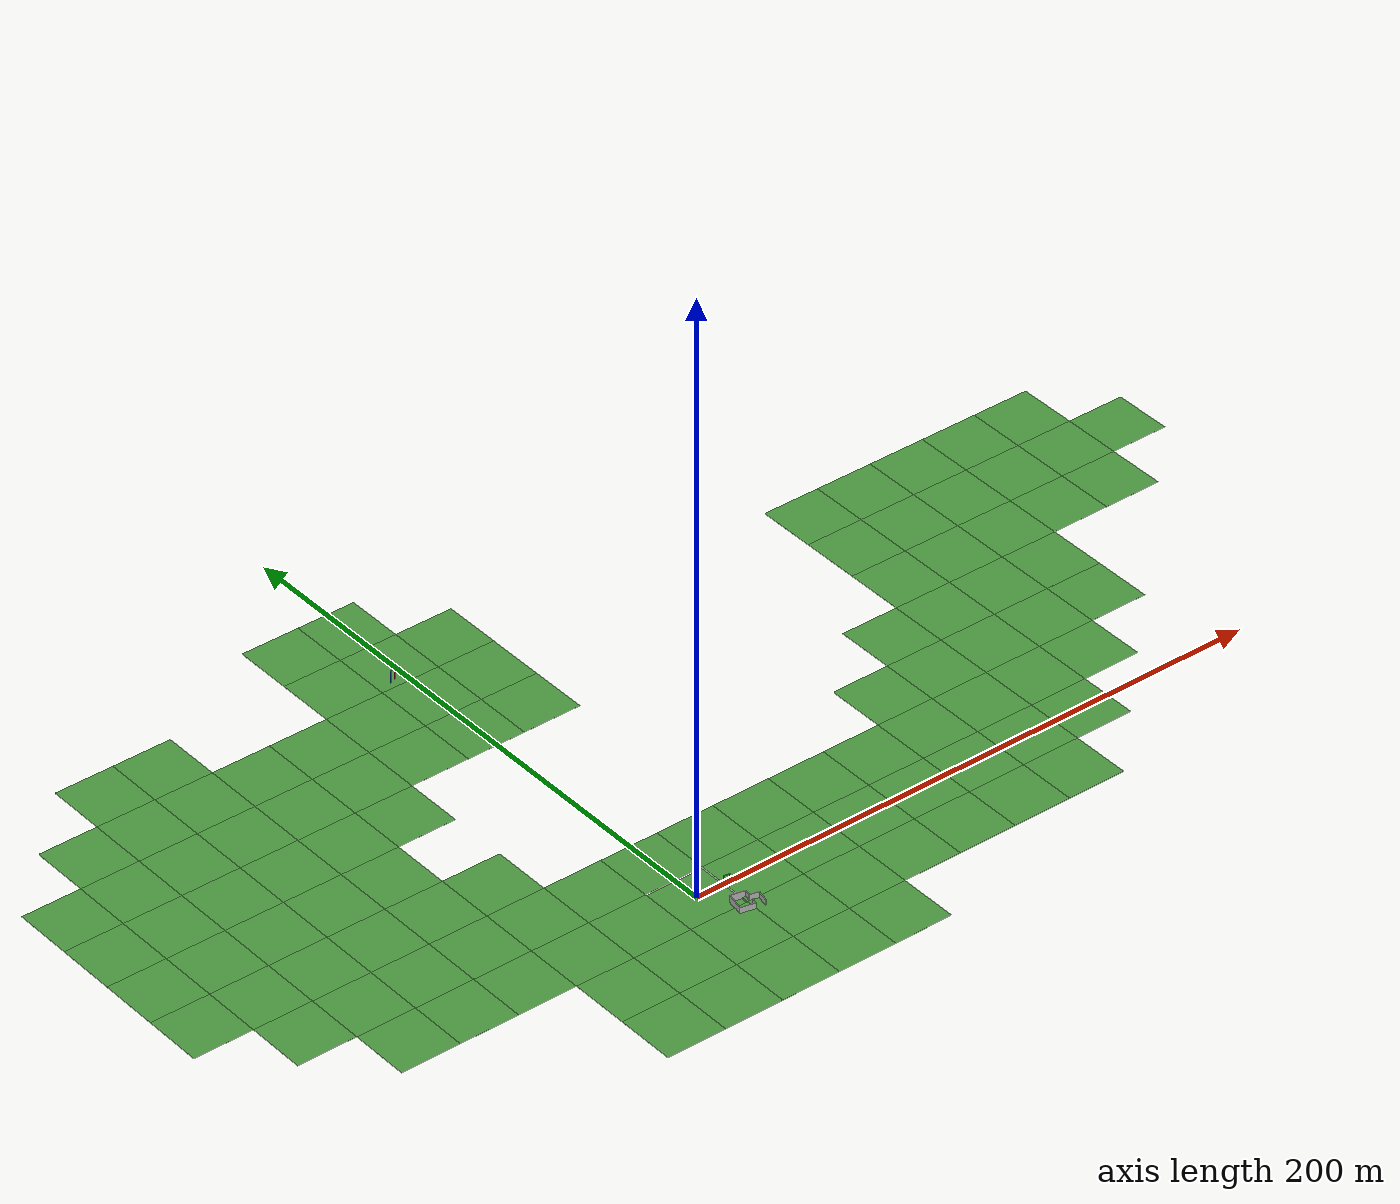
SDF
<sdf version="1.4">
 <world name="vrc_task_1">
  <scene><ambient>0.2 0.2 0.2 1.0</ambient><grid>false</grid></scene>
  <physics type="ode">
   <gravity>0 0 -9.81</gravity>
   <ode>
    <solver><type>quick</type><iters>50</iters><sor>1.4</sor></solver>
    <constraints>
     <cfm>0.0</cfm>
     <erp>0.2</erp>
     <contact_max_correcting_vel>100.0</contact_max_correcting_vel>
     <contact_surface_layer>0.0</contact_surface_layer>
    </constraints>
   </ode>
   <real_time_update_rate>1000</real_time_update_rate>
   <max_step_size>0.001</max_step_size>
  </physics>
  <light type="directional" name="sun">
   <cast_shadows>false</cast_shadows>
   <pose>0 0 100 0 0 0</pose>
   <diffuse>0.8 0.8 0.8 1</diffuse>
   <specular>0.9 0.9 0.9 1</specular>
   <attenuation>
    <range>1000</range>
    <constant>0.9</constant>
    <linear>0.01</linear>
    <quadratic>0.001</quadratic>
   </attenuation>
   <direction>0.2 0.2 -0.9</direction>
  </light>
  <light type="point" name="light_bulb">
   <cast_shadows>false</cast_shadows>
   <pose>11.48 -7.62 5 0 0 0</pose>
   <diffuse>0.3 0.3 0.3 1</diffuse>
   <specular>0.0 0.0 0.0 1</specular>
   <attenuation>
    <range>80</range>
    <constant>0.9</constant>
    <linear>0.01</linear>
    <quadratic>0.001</quadratic>
   </attenuation>
  </light>
  <include><uri>model://vrc_grass_plane2</uri></include>
  <include><uri>model://starting_pen</uri><static>true</static><pose>7.7 -10.14 0.0 0 0 -.221</pose></include>
  <include>
   <uri>model://gate</uri>
   <name>gate_0</name>
   <static>true</static>
   <pose>9.75 -1.15 2.0 0 0 1.3491</pose>
  </include>
  <include>
   <uri>model://gate</uri>
   <name>gate_3</name>
   <static>true</static>
   <pose>-4.287 132.542 2.0 0 0 1.8505</pose>
  </include>
  <model name="road_boxes">
   <static>true</static>
   <link name="link">
    <collision name="collision_1">
     <pose>-25.5 5.1 0 0 0 -0.197</pose>
     <geometry><box><size>51 7.34 0.02</size></box></geometry>
     <surface><friction><ode><mu>100</mu><mu2>50</mu2></ode></friction></surface>
    </collision>
    <collision name="collision_2">
     <pose>-75 30 0 0 0 -0.6747</pose>
     <geometry><box><size>66.0 7.34 0.02</size></box></geometry>
     <surface><friction><ode><mu>100</mu><mu2>50</mu2></ode></friction></surface>
    </collision>
    <collision name="collision_3">
     <pose>-100 76 0 0 0 0</pose>
     <geometry><box><size>7.34 56 0.02</size></box></geometry>
     <surface><friction><ode><mu>100</mu><mu2>50</mu2></ode></friction></surface>
    </collision>
    <collision name="collision_4">
     <pose>-50 115 0 0 0 0.291</pose>
     <geometry><box><size>105 7.34 0.02</size></box></geometry>
     <surface><friction><ode><mu>100</mu><mu2>50</mu2></ode></friction></surface>
    </collision>
    <collision name="collision_5">
     <pose>-5 135 0 0 0 1.8505</pose>
     <geometry><box><size>6 5 0.02</size></box></geometry>
     <surface><friction><ode><mu>100</mu><mu2>50</mu2></ode></friction></surface>
    </collision>
   </link>
  </model>
  <plugin filename="libVRCPlugin.so" name="vrc_plugin">
   <atlas><model_name>atlas</model_name><pin_link>utorso</pin_link></atlas>
   <drc_vehicle>
    <model_name>drc_vehicle</model_name>
    <seat_link>polaris_ranger_ev::chassis</seat_link>
   </drc_vehicle>
   <drc_fire_hose>
    <fire_hose_model>fire_hose</fire_hose_model>
    <coupling_link>coupling</coupling_link>
    <standpipe_model>standpipe</standpipe_model>
    <spout_link>standpipe</spout_link>
    <thread_pitch>-1000</thread_pitch>
    <coupling_relative_pose>1.17038e-05 -0.125623 0.35 -0.0412152 -1.57078 1.61199</coupling_relative_pose>
   </drc_fire_hose>
  </plugin>
  <plugin filename="libVRCScoringPlugin.so" name="vrc_scoring">
   <score_file>/tmp/vrc_final_task4/score.log</score_file>
  </plugin>
 </world>
</sdf>

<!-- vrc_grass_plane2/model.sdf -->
<sdf version='1.4'>
  <model name='vrc_grass_plane_2'>
    <static>true</static>
    <link name='link'>
      <collision name='collision'>
        <geometry>
          <plane>
            <normal>0 0 1</normal>
            <size>500 500</size>
          </plane>
        </geometry>
        <surface>
          <friction>
            <ode>
              <mu>0.5</mu>
              <mu2>.5</mu2>
            </ode>
          </friction>
        </surface>
      </collision>

      <visual name='visual_1'>
        <pose>0 0 0 0 0 0</pose>
        <cast_shadows>false</cast_shadows>
        <geometry>
          <plane>
            <normal>0 0 1</normal>
            <size>20 20</size>
          </plane>
        </geometry>
        <material>
          <script>
            <uri>model://grass_plane/materials/scripts</uri>
            <uri>model://grass_plane/materials/textures</uri>
            <name>vrc/grass</name>
          </script>
        </material>
      </visual>
      <visual name='visual_2'>
        <pose>0 100 0 0 0 0</pose>
        <cast_shadows>false</cast_shadows>
        <geometry>
          <plane>
            <normal>0 0 1</normal>
            <size>20 20</size>
          </plane>
        </geometry>
        <material>
          <script>
            <uri>model://grass_plane/materials/scripts</uri>
            <uri>model://grass_plane/materials/textures</uri>
            <name>vrc/grass</name>
          </script>
        </material>
      </visual>
      <visual name='visual_3'>
        <pose>0 120 0 0 0 0</pose>
        <cast_shadows>false</cast_shadows>
        <geometry>
          <plane>
            <normal>0 0 1</normal>
            <size>20 20</size>
          </plane>
        </geometry>
        <material>
          <script>
            <uri>model://grass_plane/materials/scripts</uri>
            <uri>model://grass_plane/materials/textures</uri>
            <name>vrc/grass</name>
          </script>
        </material>
      </visual>
      <visual name='visual_4'>
        <pose>0 140 0 0 0 0</pose>
        <cast_shadows>false</cast_shadows>
        <geometry>
          <plane>
            <normal>0 0 1</normal>
            <size>20 20</size>
          </plane>
        </geometry>
        <material>
          <script>
            <uri>model://grass_plane/materials/scripts</uri>
            <uri>model://grass_plane/materials/textures</uri>
            <name>vrc/grass</name>
          </script>
        </material>
      </visual>
      <visual name='visual_5'>
        <pose>0 160 0 0 0 0</pose>
        <cast_shadows>false</cast_shadows>
        <geometry>
          <plane>
            <normal>0 0 1</normal>
            <size>20 20</size>
          </plane>
        </geometry>
        <material>
          <script>
            <uri>model://grass_plane/materials/scripts</uri>
            <uri>model://grass_plane/materials/textures</uri>
            <name>vrc/grass</name>
          </script>
        </material>
      </visual>
      <visual name='visual_6'>
        <pose>0 20 0 0 0 0</pose>
        <cast_shadows>false</cast_shadows>
        <geometry>
          <plane>
            <normal>0 0 1</normal>
            <size>20 20</size>
          </plane>
        </geometry>
        <material>
          <script>
            <uri>model://grass_plane/materials/scripts</uri>
            <uri>model://grass_plane/materials/textures</uri>
            <name>vrc/grass</name>
          </script>
        </material>
      </visual>
      <visual name='visual_7'>
        <pose>0 -20 0 0 0 0</pose>
        <cast_shadows>false</cast_shadows>
        <geometry>
          <plane>
            <normal>0 0 1</normal>
            <size>20 20</size>
          </plane>
        </geometry>
        <material>
          <script>
            <uri>model://grass_plane/materials/scripts</uri>
            <uri>model://grass_plane/materials/textures</uri>
            <name>vrc/grass</name>
          </script>
        </material>
      </visual>
      <visual name='visual_8'>
        <pose>0 -40 0 0 0 0</pose>
        <cast_shadows>false</cast_shadows>
        <geometry>
          <plane>
            <normal>0 0 1</normal>
            <size>20 20</size>
          </plane>
        </geometry>
        <material>
          <script>
            <uri>model://grass_plane/materials/scripts</uri>
            <uri>model://grass_plane/materials/textures</uri>
            <name>vrc/grass</name>
          </script>
        </material>
      </visual>
      <visual name='visual_9'>
        <pose>-100 0 0 0 0 0</pose>
        <cast_shadows>false</cast_shadows>
        <geometry>
          <plane>
            <normal>0 0 1</normal>
            <size>20 20</size>
          </plane>
        </geometry>
        <material>
          <script>
            <uri>model://grass_plane/materials/scripts</uri>
            <uri>model://grass_plane/materials/textures</uri>
            <name>vrc/grass</name>
          </script>
        </material>
      </visual>
      <visual name='visual_10'>
        <pose>100 0 0 0 0 0</pose>
        <cast_shadows>false</cast_shadows>
        <geometry>
          <plane>
            <normal>0 0 1</normal>
            <size>20 20</size>
          </plane>
        </geometry>
        <material>
          <script>
            <uri>model://grass_plane/materials/scripts</uri>
            <uri>model://grass_plane/materials/textures</uri>
            <name>vrc/grass</name>
          </script>
        </material>
      </visual>
      <visual name='visual_11'>
        <pose>-100 100 0 0 0 0</pose>
        <cast_shadows>false</cast_shadows>
        <geometry>
          <plane>
            <normal>0 0 1</normal>
            <size>20 20</size>
          </plane>
        </geometry>
        <material>
          <script>
            <uri>model://grass_plane/materials/scripts</uri>
            <uri>model://grass_plane/materials/textures</uri>
            <name>vrc/grass</name>
          </script>
        </material>
      </visual>
      <visual name='visual_12'>
        <pose>-100 120 0 0 0 0</pose>
        <cast_shadows>false</cast_shadows>
        <geometry>
          <plane>
            <normal>0 0 1</normal>
            <size>20 20</size>
          </plane>
        </geometry>
        <material>
          <script>
            <uri>model://grass_plane/materials/scripts</uri>
            <uri>model://grass_plane/materials/textures</uri>
            <name>vrc/grass</name>
          </script>
        </material>
      </visual>
      <visual name='visual_13'>
        <pose>-100 140 0 0 0 0</pose>
        <cast_shadows>false</cast_shadows>
        <geometry>
          <plane>
            <normal>0 0 1</normal>
            <size>20 20</size>
          </plane>
        </geometry>
        <material>
          <script>
            <uri>model://grass_plane/materials/scripts</uri>
            <uri>model://grass_plane/materials/textures</uri>
            <name>vrc/grass</name>
          </script>
        </material>
      </visual>
      <visual name='visual_14'>
        <pose>-100 20 0 0 0 0</pose>
        <cast_shadows>false</cast_shadows>
        <geometry>
          <plane>
            <normal>0 0 1</normal>
            <size>20 20</size>
          </plane>
        </geometry>
        <material>
          <script>
            <uri>model://grass_plane/materials/scripts</uri>
            <uri>model://grass_plane/materials/textures</uri>
            <name>vrc/grass</name>
          </script>
        </material>
      </visual>
      <visual name='visual_15'>
        <pose>100 20 0 0 0 0</pose>
        <cast_shadows>false</cast_shadows>
        <geometry>
          <plane>
            <normal>0 0 1</normal>
            <size>20 20</size>
          </plane>
        </geometry>
        <material>
          <script>
            <uri>model://grass_plane/materials/scripts</uri>
            <uri>model://grass_plane/materials/textures</uri>
            <name>vrc/grass</name>
          </script>
        </material>
      </visual>
      <visual name='visual_16'>
        <pose>100 -20 0 0 0 0</pose>
        <cast_shadows>false</cast_shadows>
        <geometry>
          <plane>
            <normal>0 0 1</normal>
            <size>20 20</size>
          </plane>
        </geometry>
        <material>
          <script>
            <uri>model://grass_plane/materials/scripts</uri>
            <uri>model://grass_plane/materials/textures</uri>
            <name>vrc/grass</name>
          </script>
        </material>
      </visual>
      <visual name='visual_17'>
        <pose>-100 40 0 0 0 0</pose>
        <cast_shadows>false</cast_shadows>
        <geometry>
          <plane>
            <normal>0 0 1</normal>
            <size>20 20</size>
          </plane>
        </geometry>
        <material>
          <script>
            <uri>model://grass_plane/materials/scripts</uri>
            <uri>model://grass_plane/materials/textures</uri>
            <name>vrc/grass</name>
          </script>
        </material>
      </visual>
      <visual name='visual_18'>
        <pose>100 40 0 0 0 0</pose>
        <cast_shadows>false</cast_shadows>
        <geometry>
          <plane>
            <normal>0 0 1</normal>
            <size>20 20</size>
          </plane>
        </geometry>
        <material>
          <script>
            <uri>model://grass_plane/materials/scripts</uri>
            <uri>model://grass_plane/materials/textures</uri>
            <name>vrc/grass</name>
          </script>
        </material>
      </visual>
      <visual name='visual_19'>
        <pose>-100 60 0 0 0 0</pose>
        <cast_shadows>false</cast_shadows>
        <geometry>
          <plane>
            <normal>0 0 1</normal>
            <size>20 20</size>
          </plane>
        </geometry>
        <material>
          <script>
            <uri>model://grass_plane/materials/scripts</uri>
            <uri>model://grass_plane/materials/textures</uri>
            <name>vrc/grass</name>
          </script>
        </material>
      </visual>
      <visual name='visual_20'>
        <pose>-100 80 0 0 0 0</pose>
        <cast_shadows>false</cast_shadows>
        <geometry>
          <plane>
            <normal>0 0 1</normal>
            <size>20 20</size>
          </plane>
        </geometry>
        <material>
          <script>
            <uri>model://grass_plane/materials/scripts</uri>
            <uri>model://grass_plane/materials/textures</uri>
            <name>vrc/grass</name>
          </script>
        </material>
      </visual>
      <visual name='visual_21'>
        <pose>120 0 0 0 0 0</pose>
        <cast_shadows>false</cast_shadows>
        <geometry>
          <plane>
            <normal>0 0 1</normal>
            <size>20 20</size>
          </plane>
        </geometry>
        <material>
          <script>
            <uri>model://grass_plane/materials/scripts</uri>
            <uri>model://grass_plane/materials/textures</uri>
            <name>vrc/grass</name>
          </script>
        </material>
      </visual>
      <visual name='visual_22'>
        <pose>-120 100 0 0 0 0</pose>
        <cast_shadows>false</cast_shadows>
        <geometry>
          <plane>
            <normal>0 0 1</normal>
            <size>20 20</size>
          </plane>
        </geometry>
        <material>
          <script>
            <uri>model://grass_plane/materials/scripts</uri>
            <uri>model://grass_plane/materials/textures</uri>
            <name>vrc/grass</name>
          </script>
        </material>
      </visual>
      <visual name='visual_23'>
        <pose>-120 120 0 0 0 0</pose>
        <cast_shadows>false</cast_shadows>
        <geometry>
          <plane>
            <normal>0 0 1</normal>
            <size>20 20</size>
          </plane>
        </geometry>
        <material>
          <script>
            <uri>model://grass_plane/materials/scripts</uri>
            <uri>model://grass_plane/materials/textures</uri>
            <name>vrc/grass</name>
          </script>
        </material>
      </visual>
      <visual name='visual_24'>
        <pose>-120 20 0 0 0 0</pose>
        <cast_shadows>false</cast_shadows>
        <geometry>
          <plane>
            <normal>0 0 1</normal>
            <size>20 20</size>
          </plane>
        </geometry>
        <material>
          <script>
            <uri>model://grass_plane/materials/scripts</uri>
            <uri>model://grass_plane/materials/textures</uri>
            <name>vrc/grass</name>
          </script>
        </material>
      </visual>
      <visual name='visual_25'>
        <pose>120 20 0 0 0 0</pose>
        <cast_shadows>false</cast_shadows>
        <geometry>
          <plane>
            <normal>0 0 1</normal>
            <size>20 20</size>
          </plane>
        </geometry>
        <material>
          <script>
            <uri>model://grass_plane/materials/scripts</uri>
            <uri>model://grass_plane/materials/textures</uri>
            <name>vrc/grass</name>
          </script>
        </material>
      </visual>
      <visual name='visual_26'>
        <pose>120 -20 0 0 0 0</pose>
        <cast_shadows>false</cast_shadows>
        <geometry>
          <plane>
            <normal>0 0 1</normal>
            <size>20 20</size>
          </plane>
        </geometry>
        <material>
          <script>
            <uri>model://grass_plane/materials/scripts</uri>
            <uri>model://grass_plane/materials/textures</uri>
            <name>vrc/grass</name>
          </script>
        </material>
      </visual>
      <visual name='visual_27'>
        <pose>-120 40 0 0 0 0</pose>
        <cast_shadows>false</cast_shadows>
        <geometry>
          <plane>
            <normal>0 0 1</normal>
            <size>20 20</size>
          </plane>
        </geometry>
        <material>
          <script>
            <uri>model://grass_plane/materials/scripts</uri>
            <uri>model://grass_plane/materials/textures</uri>
            <name>vrc/grass</name>
          </script>
        </material>
      </visual>
      <visual name='visual_28'>
        <pose>120 40 0 0 0 0</pose>
        <cast_shadows>false</cast_shadows>
        <geometry>
          <plane>
            <normal>0 0 1</normal>
            <size>20 20</size>
          </plane>
        </geometry>
        <material>
          <script>
            <uri>model://grass_plane/materials/scripts</uri>
            <uri>model://grass_plane/materials/textures</uri>
            <name>vrc/grass</name>
          </script>
        </material>
      </visual>
      <visual name='visual_29'>
        <pose>-120 60 0 0 0 0</pose>
        <cast_shadows>false</cast_shadows>
        <geometry>
          <plane>
            <normal>0 0 1</normal>
            <size>20 20</size>
          </plane>
        </geometry>
        <material>
          <script>
            <uri>model://grass_plane/materials/scripts</uri>
            <uri>model://grass_plane/materials/textures</uri>
            <name>vrc/grass</name>
          </script>
        </material>
      </visual>
      <visual name='visual_30'>
        <pose>120 60 0 0 0 0</pose>
        <cast_shadows>false</cast_shadows>
        <geometry>
          <plane>
            <normal>0 0 1</normal>
            <size>20 20</size>
          </plane>
        </geometry>
        <material>
          <script>
            <uri>model://grass_plane/materials/scripts</uri>
            <uri>model://grass_plane/materials/textures</uri>
            <name>vrc/grass</name>
          </script>
        </material>
      </visual>
      <visual name='visual_31'>
        <pose>-120 80 0 0 0 0</pose>
        <cast_shadows>false</cast_shadows>
        <geometry>
          <plane>
            <normal>0 0 1</normal>
            <size>20 20</size>
          </plane>
        </geometry>
        <material>
          <script>
            <uri>model://grass_plane/materials/scripts</uri>
            <uri>model://grass_plane/materials/textures</uri>
            <name>vrc/grass</name>
          </script>
        </material>
      </visual>
      <visual name='visual_32'>
        <pose>140 0 0 0 0 0</pose>
        <cast_shadows>false</cast_shadows>
        <geometry>
          <plane>
            <normal>0 0 1</normal>
            <size>20 20</size>
          </plane>
        </geometry>
        <material>
          <script>
            <uri>model://grass_plane/materials/scripts</uri>
            <uri>model://grass_plane/materials/textures</uri>
            <name>vrc/grass</name>
          </script>
        </material>
      </visual>
      <visual name='visual_33'>
        <pose>-140 100 0 0 0 0</pose>
        <cast_shadows>false</cast_shadows>
        <geometry>
          <plane>
            <normal>0 0 1</normal>
            <size>20 20</size>
          </plane>
        </geometry>
        <material>
          <script>
            <uri>model://grass_plane/materials/scripts</uri>
            <uri>model://grass_plane/materials/textures</uri>
            <name>vrc/grass</name>
          </script>
        </material>
      </visual>
      <visual name='visual_34'>
        <pose>140 100 0 0 0 0</pose>
        <cast_shadows>false</cast_shadows>
        <geometry>
          <plane>
            <normal>0 0 1</normal>
            <size>20 20</size>
          </plane>
        </geometry>
        <material>
          <script>
            <uri>model://grass_plane/materials/scripts</uri>
            <uri>model://grass_plane/materials/textures</uri>
            <name>vrc/grass</name>
          </script>
        </material>
      </visual>
      <visual name='visual_35'>
        <pose>140 120 0 0 0 0</pose>
        <cast_shadows>false</cast_shadows>
        <geometry>
          <plane>
            <normal>0 0 1</normal>
            <size>20 20</size>
          </plane>
        </geometry>
        <material>
          <script>
            <uri>model://grass_plane/materials/scripts</uri>
            <uri>model://grass_plane/materials/textures</uri>
            <name>vrc/grass</name>
          </script>
        </material>
      </visual>
      <visual name='visual_36'>
        <pose>140 20 0 0 0 0</pose>
        <cast_shadows>false</cast_shadows>
        <geometry>
          <plane>
            <normal>0 0 1</normal>
            <size>20 20</size>
          </plane>
        </geometry>
        <material>
          <script>
            <uri>model://grass_plane/materials/scripts</uri>
            <uri>model://grass_plane/materials/textures</uri>
            <name>vrc/grass</name>
          </script>
        </material>
      </visual>
      <visual name='visual_37'>
        <pose>-140 40 0 0 0 0</pose>
        <cast_shadows>false</cast_shadows>
        <geometry>
          <plane>
            <normal>0 0 1</normal>
            <size>20 20</size>
          </plane>
        </geometry>
        <material>
          <script>
            <uri>model://grass_plane/materials/scripts</uri>
            <uri>model://grass_plane/materials/textures</uri>
            <name>vrc/grass</name>
          </script>
        </material>
      </visual>
      <visual name='visual_38'>
        <pose>140 40 0 0 0 0</pose>
        <cast_shadows>false</cast_shadows>
        <geometry>
          <plane>
            <normal>0 0 1</normal>
            <size>20 20</size>
          </plane>
        </geometry>
        <material>
          <script>
            <uri>model://grass_plane/materials/scripts</uri>
            <uri>model://grass_plane/materials/textures</uri>
            <name>vrc/grass</name>
          </script>
        </material>
      </visual>
      <visual name='visual_39'>
        <pose>-140 60 0 0 0 0</pose>
        <cast_shadows>false</cast_shadows>
        <geometry>
          <plane>
            <normal>0 0 1</normal>
            <size>20 20</size>
          </plane>
        </geometry>
        <material>
          <script>
            <uri>model://grass_plane/materials/scripts</uri>
            <uri>model://grass_plane/materials/textures</uri>
            <name>vrc/grass</name>
          </script>
        </material>
      </visual>
      <visual name='visual_40'>
        <pose>140 60 0 0 0 0</pose>
        <cast_shadows>false</cast_shadows>
        <geometry>
          <plane>
            <normal>0 0 1</normal>
            <size>20 20</size>
          </plane>
        </geometry>
        <material>
          <script>
            <uri>model://grass_plane/materials/scripts</uri>
            <uri>model://grass_plane/materials/textures</uri>
            <name>vrc/grass</name>
          </script>
        </material>
      </visual>
      <visual name='visual_41'>
        <pose>-140 80 0 0 0 0</pose>
        <cast_shadows>false</cast_shadows>
        <geometry>
          <plane>
            <normal>0 0 1</normal>
            <size>20 20</size>
          </plane>
        </geometry>
        <material>
          <script>
            <uri>model://grass_plane/materials/scripts</uri>
            <uri>model://grass_plane/materials/textures</uri>
            <name>vrc/grass</name>
          </script>
        </material>
      </visual>
      <visual name='visual_42'>
        <pose>140 80 0 0 0 0</pose>
        <cast_shadows>false</cast_shadows>
        <geometry>
          <plane>
            <normal>0 0 1</normal>
            <size>20 20</size>
          </plane>
        </geometry>
        <material>
          <script>
            <uri>model://grass_plane/materials/scripts</uri>
            <uri>model://grass_plane/materials/textures</uri>
            <name>vrc/grass</name>
          </script>
        </material>
      </visual>
      <visual name='visual_43'>
        <pose>160 100 0 0 0 0</pose>
        <cast_shadows>false</cast_shadows>
        <geometry>
          <plane>
            <normal>0 0 1</normal>
            <size>20 20</size>
          </plane>
        </geometry>
        <material>
          <script>
            <uri>model://grass_plane/materials/scripts</uri>
            <uri>model://grass_plane/materials/textures</uri>
            <name>vrc/grass</name>
          </script>
        </material>
      </visual>
      <visual name='visual_44'>
        <pose>160 120 0 0 0 0</pose>
        <cast_shadows>false</cast_shadows>
        <geometry>
          <plane>
            <normal>0 0 1</normal>
            <size>20 20</size>
          </plane>
        </geometry>
        <material>
          <script>
            <uri>model://grass_plane/materials/scripts</uri>
            <uri>model://grass_plane/materials/textures</uri>
            <name>vrc/grass</name>
          </script>
        </material>
      </visual>
      <visual name='visual_45'>
        <pose>160 20 0 0 0 0</pose>
        <cast_shadows>false</cast_shadows>
        <geometry>
          <plane>
            <normal>0 0 1</normal>
            <size>20 20</size>
          </plane>
        </geometry>
        <material>
          <script>
            <uri>model://grass_plane/materials/scripts</uri>
            <uri>model://grass_plane/materials/textures</uri>
            <name>vrc/grass</name>
          </script>
        </material>
      </visual>
      <visual name='visual_46'>
        <pose>160 40 0 0 0 0</pose>
        <cast_shadows>false</cast_shadows>
        <geometry>
          <plane>
            <normal>0 0 1</normal>
            <size>20 20</size>
          </plane>
        </geometry>
        <material>
          <script>
            <uri>model://grass_plane/materials/scripts</uri>
            <uri>model://grass_plane/materials/textures</uri>
            <name>vrc/grass</name>
          </script>
        </material>
      </visual>
      <visual name='visual_47'>
        <pose>160 60 0 0 0 0</pose>
        <cast_shadows>false</cast_shadows>
        <geometry>
          <plane>
            <normal>0 0 1</normal>
            <size>20 20</size>
          </plane>
        </geometry>
        <material>
          <script>
            <uri>model://grass_plane/materials/scripts</uri>
            <uri>model://grass_plane/materials/textures</uri>
            <name>vrc/grass</name>
          </script>
        </material>
      </visual>
      <visual name='visual_48'>
        <pose>160 80 0 0 0 0</pose>
        <cast_shadows>false</cast_shadows>
        <geometry>
          <plane>
            <normal>0 0 1</normal>
            <size>20 20</size>
          </plane>
        </geometry>
        <material>
          <script>
            <uri>model://grass_plane/materials/scripts</uri>
            <uri>model://grass_plane/materials/textures</uri>
            <name>vrc/grass</name>
          </script>
        </material>
      </visual>
      <visual name='visual_49'>
        <pose>180 100 0 0 0 0</pose>
        <cast_shadows>false</cast_shadows>
        <geometry>
          <plane>
            <normal>0 0 1</normal>
            <size>20 20</size>
          </plane>
        </geometry>
        <material>
          <script>
            <uri>model://grass_plane/materials/scripts</uri>
            <uri>model://grass_plane/materials/textures</uri>
            <name>vrc/grass</name>
          </script>
        </material>
      </visual>
      <visual name='visual_50'>
        <pose>180 120 0 0 0 0</pose>
        <cast_shadows>false</cast_shadows>
        <geometry>
          <plane>
            <normal>0 0 1</normal>
            <size>20 20</size>
          </plane>
        </geometry>
        <material>
          <script>
            <uri>model://grass_plane/materials/scripts</uri>
            <uri>model://grass_plane/materials/textures</uri>
            <name>vrc/grass</name>
          </script>
        </material>
      </visual>
      <visual name='visual_51'>
        <pose>180 40 0 0 0 0</pose>
        <cast_shadows>false</cast_shadows>
        <geometry>
          <plane>
            <normal>0 0 1</normal>
            <size>20 20</size>
          </plane>
        </geometry>
        <material>
          <script>
            <uri>model://grass_plane/materials/scripts</uri>
            <uri>model://grass_plane/materials/textures</uri>
            <name>vrc/grass</name>
          </script>
        </material>
      </visual>
      <visual name='visual_52'>
        <pose>180 60 0 0 0 0</pose>
        <cast_shadows>false</cast_shadows>
        <geometry>
          <plane>
            <normal>0 0 1</normal>
            <size>20 20</size>
          </plane>
        </geometry>
        <material>
          <script>
            <uri>model://grass_plane/materials/scripts</uri>
            <uri>model://grass_plane/materials/textures</uri>
            <name>vrc/grass</name>
          </script>
        </material>
      </visual>
      <visual name='visual_53'>
        <pose>180 80 0 0 0 0</pose>
        <cast_shadows>false</cast_shadows>
        <geometry>
          <plane>
            <normal>0 0 1</normal>
            <size>20 20</size>
          </plane>
        </geometry>
        <material>
          <script>
            <uri>model://grass_plane/materials/scripts</uri>
            <uri>model://grass_plane/materials/textures</uri>
            <name>vrc/grass</name>
          </script>
        </material>
      </visual>
      <visual name='visual_54'>
        <pose>-20 0 0 0 0 0</pose>
        <cast_shadows>false</cast_shadows>
        <geometry>
          <plane>
            <normal>0 0 1</normal>
            <size>20 20</size>
          </plane>
        </geometry>
        <material>
          <script>
            <uri>model://grass_plane/materials/scripts</uri>
            <uri>model://grass_plane/materials/textures</uri>
            <name>vrc/grass</name>
          </script>
        </material>
      </visual>
      <visual name='visual_55'>
        <pose>20 0 0 0 0 0</pose>
        <cast_shadows>false</cast_shadows>
        <geometry>
          <plane>
            <normal>0 0 1</normal>
            <size>20 20</size>
          </plane>
        </geometry>
        <material>
          <script>
            <uri>model://grass_plane/materials/scripts</uri>
            <uri>model://grass_plane/materials/textures</uri>
            <name>vrc/grass</name>
          </script>
        </material>
      </visual>
      <visual name='visual_56'>
        <pose>200 100 0 0 0 0</pose>
        <cast_shadows>false</cast_shadows>
        <geometry>
          <plane>
            <normal>0 0 1</normal>
            <size>20 20</size>
          </plane>
        </geometry>
        <material>
          <script>
            <uri>model://grass_plane/materials/scripts</uri>
            <uri>model://grass_plane/materials/textures</uri>
            <name>vrc/grass</name>
          </script>
        </material>
      </visual>
      <visual name='visual_57'>
        <pose>200 120 0 0 0 0</pose>
        <cast_shadows>false</cast_shadows>
        <geometry>
          <plane>
            <normal>0 0 1</normal>
            <size>20 20</size>
          </plane>
        </geometry>
        <material>
          <script>
            <uri>model://grass_plane/materials/scripts</uri>
            <uri>model://grass_plane/materials/textures</uri>
            <name>vrc/grass</name>
          </script>
        </material>
      </visual>
      <visual name='visual_58'>
        <pose>200 80 0 0 0 0</pose>
        <cast_shadows>false</cast_shadows>
        <geometry>
          <plane>
            <normal>0 0 1</normal>
            <size>20 20</size>
          </plane>
        </geometry>
        <material>
          <script>
            <uri>model://grass_plane/materials/scripts</uri>
            <uri>model://grass_plane/materials/textures</uri>
            <name>vrc/grass</name>
          </script>
        </material>
      </visual>
      <visual name='visual_59'>
        <pose>-20 100 0 0 0 0</pose>
        <cast_shadows>false</cast_shadows>
        <geometry>
          <plane>
            <normal>0 0 1</normal>
            <size>20 20</size>
          </plane>
        </geometry>
        <material>
          <script>
            <uri>model://grass_plane/materials/scripts</uri>
            <uri>model://grass_plane/materials/textures</uri>
            <name>vrc/grass</name>
          </script>
        </material>
      </visual>
      <visual name='visual_60'>
        <pose>20 100 0 0 0 0</pose>
        <cast_shadows>false</cast_shadows>
        <geometry>
          <plane>
            <normal>0 0 1</normal>
            <size>20 20</size>
          </plane>
        </geometry>
        <material>
          <script>
            <uri>model://grass_plane/materials/scripts</uri>
            <uri>model://grass_plane/materials/textures</uri>
            <name>vrc/grass</name>
          </script>
        </material>
      </visual>
      <visual name='visual_61'>
        <pose>-20 120 0 0 0 0</pose>
        <cast_shadows>false</cast_shadows>
        <geometry>
          <plane>
            <normal>0 0 1</normal>
            <size>20 20</size>
          </plane>
        </geometry>
        <material>
          <script>
            <uri>model://grass_plane/materials/scripts</uri>
            <uri>model://grass_plane/materials/textures</uri>
            <name>vrc/grass</name>
          </script>
        </material>
      </visual>
      <visual name='visual_62'>
        <pose>20 120 0 0 0 0</pose>
        <cast_shadows>false</cast_shadows>
        <geometry>
          <plane>
            <normal>0 0 1</normal>
            <size>20 20</size>
          </plane>
        </geometry>
        <material>
          <script>
            <uri>model://grass_plane/materials/scripts</uri>
            <uri>model://grass_plane/materials/textures</uri>
            <name>vrc/grass</name>
          </script>
        </material>
      </visual>
      <visual name='visual_63'>
        <pose>-20 140 0 0 0 0</pose>
        <cast_shadows>false</cast_shadows>
        <geometry>
          <plane>
            <normal>0 0 1</normal>
            <size>20 20</size>
          </plane>
        </geometry>
        <material>
          <script>
            <uri>model://grass_plane/materials/scripts</uri>
            <uri>model://grass_plane/materials/textures</uri>
            <name>vrc/grass</name>
          </script>
        </material>
      </visual>
      <visual name='visual_64'>
        <pose>20 140 0 0 0 0</pose>
        <cast_shadows>false</cast_shadows>
        <geometry>
          <plane>
            <normal>0 0 1</normal>
            <size>20 20</size>
          </plane>
        </geometry>
        <material>
          <script>
            <uri>model://grass_plane/materials/scripts</uri>
            <uri>model://grass_plane/materials/textures</uri>
            <name>vrc/grass</name>
          </script>
        </material>
      </visual>
      <visual name='visual_65'>
        <pose>-20 160 0 0 0 0</pose>
        <cast_shadows>false</cast_shadows>
        <geometry>
          <plane>
            <normal>0 0 1</normal>
            <size>20 20</size>
          </plane>
        </geometry>
        <material>
          <script>
            <uri>model://grass_plane/materials/scripts</uri>
            <uri>model://grass_plane/materials/textures</uri>
            <name>vrc/grass</name>
          </script>
        </material>
      </visual>
      <visual name='visual_66'>
        <pose>-20 20 0 0 0 0</pose>
        <cast_shadows>false</cast_shadows>
        <geometry>
          <plane>
            <normal>0 0 1</normal>
            <size>20 20</size>
          </plane>
        </geometry>
        <material>
          <script>
            <uri>model://grass_plane/materials/scripts</uri>
            <uri>model://grass_plane/materials/textures</uri>
            <name>vrc/grass</name>
          </script>
        </material>
      </visual>
      <visual name='visual_67'>
        <pose>-20 -20 0 0 0 0</pose>
        <cast_shadows>false</cast_shadows>
        <geometry>
          <plane>
            <normal>0 0 1</normal>
            <size>20 20</size>
          </plane>
        </geometry>
        <material>
          <script>
            <uri>model://grass_plane/materials/scripts</uri>
            <uri>model://grass_plane/materials/textures</uri>
            <name>vrc/grass</name>
          </script>
        </material>
      </visual>
      <visual name='visual_68'>
        <pose>20 20 0 0 0 0</pose>
        <cast_shadows>false</cast_shadows>
        <geometry>
          <plane>
            <normal>0 0 1</normal>
            <size>20 20</size>
          </plane>
        </geometry>
        <material>
          <script>
            <uri>model://grass_plane/materials/scripts</uri>
            <uri>model://grass_plane/materials/textures</uri>
            <name>vrc/grass</name>
          </script>
        </material>
      </visual>
      <visual name='visual_69'>
        <pose>20 -20 0 0 0 0</pose>
        <cast_shadows>false</cast_shadows>
        <geometry>
          <plane>
            <normal>0 0 1</normal>
            <size>20 20</size>
          </plane>
        </geometry>
        <material>
          <script>
            <uri>model://grass_plane/materials/scripts</uri>
            <uri>model://grass_plane/materials/textures</uri>
            <name>vrc/grass</name>
          </script>
        </material>
      </visual>
      <visual name='visual_70'>
        <pose>-20 -40 0 0 0 0</pose>
        <cast_shadows>false</cast_shadows>
        <geometry>
          <plane>
            <normal>0 0 1</normal>
            <size>20 20</size>
          </plane>
        </geometry>
        <material>
          <script>
            <uri>model://grass_plane/materials/scripts</uri>
            <uri>model://grass_plane/materials/textures</uri>
            <name>vrc/grass</name>
          </script>
        </material>
      </visual>
      <visual name='visual_71'>
        <pose>20 -40 0 0 0 0</pose>
        <cast_shadows>false</cast_shadows>
        <geometry>
          <plane>
            <normal>0 0 1</normal>
            <size>20 20</size>
          </plane>
        </geometry>
        <material>
          <script>
            <uri>model://grass_plane/materials/scripts</uri>
            <uri>model://grass_plane/materials/textures</uri>
            <name>vrc/grass</name>
          </script>
        </material>
      </visual>
      <visual name='visual_72'>
        <pose>220 100 0 0 0 0</pose>
        <cast_shadows>false</cast_shadows>
        <geometry>
          <plane>
            <normal>0 0 1</normal>
            <size>20 20</size>
          </plane>
        </geometry>
        <material>
          <script>
            <uri>model://grass_plane/materials/scripts</uri>
            <uri>model://grass_plane/materials/textures</uri>
            <name>vrc/grass</name>
          </script>
        </material>
      </visual>
      <visual name='visual_73'>
        <pose>220 120 0 0 0 0</pose>
        <cast_shadows>false</cast_shadows>
        <geometry>
          <plane>
            <normal>0 0 1</normal>
            <size>20 20</size>
          </plane>
        </geometry>
        <material>
          <script>
            <uri>model://grass_plane/materials/scripts</uri>
            <uri>model://grass_plane/materials/textures</uri>
            <name>vrc/grass</name>
          </script>
        </material>
      </visual>
      <visual name='visual_74'>
        <pose>220 80 0 0 0 0</pose>
        <cast_shadows>false</cast_shadows>
        <geometry>
          <plane>
            <normal>0 0 1</normal>
            <size>20 20</size>
          </plane>
        </geometry>
        <material>
          <script>
            <uri>model://grass_plane/materials/scripts</uri>
            <uri>model://grass_plane/materials/textures</uri>
            <name>vrc/grass</name>
          </script>
        </material>
      </visual>
      <visual name='visual_75'>
        <pose>240 100 0 0 0 0</pose>
        <cast_shadows>false</cast_shadows>
        <geometry>
          <plane>
            <normal>0 0 1</normal>
            <size>20 20</size>
          </plane>
        </geometry>
        <material>
          <script>
            <uri>model://grass_plane/materials/scripts</uri>
            <uri>model://grass_plane/materials/textures</uri>
            <name>vrc/grass</name>
          </script>
        </material>
      </visual>
      <visual name='visual_76'>
        <pose>-40 0 0 0 0 0</pose>
        <cast_shadows>false</cast_shadows>
        <geometry>
          <plane>
            <normal>0 0 1</normal>
            <size>20 20</size>
          </plane>
        </geometry>
        <material>
          <script>
            <uri>model://grass_plane/materials/scripts</uri>
            <uri>model://grass_plane/materials/textures</uri>
            <name>vrc/grass</name>
          </script>
        </material>
      </visual>
      <visual name='visual_77'>
        <pose>40 0 0 0 0 0</pose>
        <cast_shadows>false</cast_shadows>
        <geometry>
          <plane>
            <normal>0 0 1</normal>
            <size>20 20</size>
          </plane>
        </geometry>
        <material>
          <script>
            <uri>model://grass_plane/materials/scripts</uri>
            <uri>model://grass_plane/materials/textures</uri>
            <name>vrc/grass</name>
          </script>
        </material>
      </visual>
      <visual name='visual_78'>
        <pose>-40 100 0 0 0 0</pose>
        <cast_shadows>false</cast_shadows>
        <geometry>
          <plane>
            <normal>0 0 1</normal>
            <size>20 20</size>
          </plane>
        </geometry>
        <material>
          <script>
            <uri>model://grass_plane/materials/scripts</uri>
            <uri>model://grass_plane/materials/textures</uri>
            <name>vrc/grass</name>
          </script>
        </material>
      </visual>
      <visual name='visual_79'>
        <pose>-40 120 0 0 0 0</pose>
        <cast_shadows>false</cast_shadows>
        <geometry>
          <plane>
            <normal>0 0 1</normal>
            <size>20 20</size>
          </plane>
        </geometry>
        <material>
          <script>
            <uri>model://grass_plane/materials/scripts</uri>
            <uri>model://grass_plane/materials/textures</uri>
            <name>vrc/grass</name>
          </script>
        </material>
      </visual>
      <visual name='visual_80'>
        <pose>-40 20 0 0 0 0</pose>
        <cast_shadows>false</cast_shadows>
        <geometry>
          <plane>
            <normal>0 0 1</normal>
            <size>20 20</size>
          </plane>
        </geometry>
        <material>
          <script>
            <uri>model://grass_plane/materials/scripts</uri>
            <uri>model://grass_plane/materials/textures</uri>
            <name>vrc/grass</name>
          </script>
        </material>
      </visual>
      <visual name='visual_81'>
        <pose>-40 -20 0 0 0 0</pose>
        <cast_shadows>false</cast_shadows>
        <geometry>
          <plane>
            <normal>0 0 1</normal>
            <size>20 20</size>
          </plane>
        </geometry>
        <material>
          <script>
            <uri>model://grass_plane/materials/scripts</uri>
            <uri>model://grass_plane/materials/textures</uri>
            <name>vrc/grass</name>
          </script>
        </material>
      </visual>
      <visual name='visual_82'>
        <pose>40 20 0 0 0 0</pose>
        <cast_shadows>false</cast_shadows>
        <geometry>
          <plane>
            <normal>0 0 1</normal>
            <size>20 20</size>
          </plane>
        </geometry>
        <material>
          <script>
            <uri>model://grass_plane/materials/scripts</uri>
            <uri>model://grass_plane/materials/textures</uri>
            <name>vrc/grass</name>
          </script>
        </material>
      </visual>
      <visual name='visual_83'>
        <pose>40 -20 0 0 0 0</pose>
        <cast_shadows>false</cast_shadows>
        <geometry>
          <plane>
            <normal>0 0 1</normal>
            <size>20 20</size>
          </plane>
        </geometry>
        <material>
          <script>
            <uri>model://grass_plane/materials/scripts</uri>
            <uri>model://grass_plane/materials/textures</uri>
            <name>vrc/grass</name>
          </script>
        </material>
      </visual>
      <visual name='visual_84'>
        <pose>-40 40 0 0 0 0</pose>
        <cast_shadows>false</cast_shadows>
        <geometry>
          <plane>
            <normal>0 0 1</normal>
            <size>20 20</size>
          </plane>
        </geometry>
        <material>
          <script>
            <uri>model://grass_plane/materials/scripts</uri>
            <uri>model://grass_plane/materials/textures</uri>
            <name>vrc/grass</name>
          </script>
        </material>
      </visual>
      <visual name='visual_85'>
        <pose>-40 -40 0 0 0 0</pose>
        <cast_shadows>false</cast_shadows>
        <geometry>
          <plane>
            <normal>0 0 1</normal>
            <size>20 20</size>
          </plane>
        </geometry>
        <material>
          <script>
            <uri>model://grass_plane/materials/scripts</uri>
            <uri>model://grass_plane/materials/textures</uri>
            <name>vrc/grass</name>
          </script>
        </material>
      </visual>
      <visual name='visual_86'>
        <pose>40 -40 0 0 0 0</pose>
        <cast_shadows>false</cast_shadows>
        <geometry>
          <plane>
            <normal>0 0 1</normal>
            <size>20 20</size>
          </plane>
        </geometry>
        <material>
          <script>
            <uri>model://grass_plane/materials/scripts</uri>
            <uri>model://grass_plane/materials/textures</uri>
            <name>vrc/grass</name>
          </script>
        </material>
      </visual>
      <visual name='visual_87'>
        <pose>-40 80 0 0 0 0</pose>
        <cast_shadows>false</cast_shadows>
        <geometry>
          <plane>
            <normal>0 0 1</normal>
            <size>20 20</size>
          </plane>
        </geometry>
        <material>
          <script>
            <uri>model://grass_plane/materials/scripts</uri>
            <uri>model://grass_plane/materials/textures</uri>
            <name>vrc/grass</name>
          </script>
        </material>
      </visual>
      <visual name='visual_88'>
        <pose>-60 0 0 0 0 0</pose>
        <cast_shadows>false</cast_shadows>
        <geometry>
          <plane>
            <normal>0 0 1</normal>
            <size>20 20</size>
          </plane>
        </geometry>
        <material>
          <script>
            <uri>model://grass_plane/materials/scripts</uri>
            <uri>model://grass_plane/materials/textures</uri>
            <name>vrc/grass</name>
          </script>
        </material>
      </visual>
      <visual name='visual_89'>
        <pose>60 0 0 0 0 0</pose>
        <cast_shadows>false</cast_shadows>
        <geometry>
          <plane>
            <normal>0 0 1</normal>
            <size>20 20</size>
          </plane>
        </geometry>
        <material>
          <script>
            <uri>model://grass_plane/materials/scripts</uri>
            <uri>model://grass_plane/materials/textures</uri>
            <name>vrc/grass</name>
          </script>
        </material>
      </visual>
      <visual name='visual_90'>
        <pose>-60 100 0 0 0 0</pose>
        <cast_shadows>false</cast_shadows>
        <geometry>
          <plane>
            <normal>0 0 1</normal>
            <size>20 20</size>
          </plane>
        </geometry>
        <material>
          <script>
            <uri>model://grass_plane/materials/scripts</uri>
            <uri>model://grass_plane/materials/textures</uri>
            <name>vrc/grass</name>
          </script>
        </material>
      </visual>
      <visual name='visual_91'>
        <pose>-60 120 0 0 0 0</pose>
        <cast_shadows>false</cast_shadows>
        <geometry>
          <plane>
            <normal>0 0 1</normal>
            <size>20 20</size>
          </plane>
        </geometry>
        <material>
          <script>
            <uri>model://grass_plane/materials/scripts</uri>
            <uri>model://grass_plane/materials/textures</uri>
            <name>vrc/grass</name>
          </script>
        </material>
      </visual>
      <visual name='visual_92'>
        <pose>-60 20 0 0 0 0</pose>
        <cast_shadows>false</cast_shadows>
        <geometry>
          <plane>
            <normal>0 0 1</normal>
            <size>20 20</size>
          </plane>
        </geometry>
        <material>
          <script>
            <uri>model://grass_plane/materials/scripts</uri>
            <uri>model://grass_plane/materials/textures</uri>
            <name>vrc/grass</name>
          </script>
        </material>
      </visual>
      <visual name='visual_93'>
        <pose>60 20 0 0 0 0</pose>
        <cast_shadows>false</cast_shadows>
        <geometry>
          <plane>
            <normal>0 0 1</normal>
            <size>20 20</size>
          </plane>
        </geometry>
        <material>
          <script>
            <uri>model://grass_plane/materials/scripts</uri>
            <uri>model://grass_plane/materials/textures</uri>
            <name>vrc/grass</name>
          </script>
        </material>
      </visual>
      <visual name='visual_94'>
        <pose>60 -20 0 0 0 0</pose>
        <cast_shadows>false</cast_shadows>
        <geometry>
          <plane>
            <normal>0 0 1</normal>
            <size>20 20</size>
          </plane>
        </geometry>
        <material>
          <script>
            <uri>model://grass_plane/materials/scripts</uri>
            <uri>model://grass_plane/materials/textures</uri>
            <name>vrc/grass</name>
          </script>
        </material>
      </visual>
      <visual name='visual_95'>
        <pose>-60 40 0 0 0 0</pose>
        <cast_shadows>false</cast_shadows>
        <geometry>
          <plane>
            <normal>0 0 1</normal>
            <size>20 20</size>
          </plane>
        </geometry>
        <material>
          <script>
            <uri>model://grass_plane/materials/scripts</uri>
            <uri>model://grass_plane/materials/textures</uri>
            <name>vrc/grass</name>
          </script>
        </material>
      </visual>
      <visual name='visual_96'>
        <pose>-60 60 0 0 0 0</pose>
        <cast_shadows>false</cast_shadows>
        <geometry>
          <plane>
            <normal>0 0 1</normal>
            <size>20 20</size>
          </plane>
        </geometry>
        <material>
          <script>
            <uri>model://grass_plane/materials/scripts</uri>
            <uri>model://grass_plane/materials/textures</uri>
            <name>vrc/grass</name>
          </script>
        </material>
      </visual>
      <visual name='visual_97'>
        <pose>-60 80 0 0 0 0</pose>
        <cast_shadows>false</cast_shadows>
        <geometry>
          <plane>
            <normal>0 0 1</normal>
            <size>20 20</size>
          </plane>
        </geometry>
        <material>
          <script>
            <uri>model://grass_plane/materials/scripts</uri>
            <uri>model://grass_plane/materials/textures</uri>
            <name>vrc/grass</name>
          </script>
        </material>
      </visual>
      <visual name='visual_98'>
        <pose>-80 0 0 0 0 0</pose>
        <cast_shadows>false</cast_shadows>
        <geometry>
          <plane>
            <normal>0 0 1</normal>
            <size>20 20</size>
          </plane>
        </geometry>
        <material>
          <script>
            <uri>model://grass_plane/materials/scripts</uri>
            <uri>model://grass_plane/materials/textures</uri>
            <name>vrc/grass</name>
          </script>
        </material>
      </visual>
      <visual name='visual_99'>
        <pose>80 0 0 0 0 0</pose>
        <cast_shadows>false</cast_shadows>
        <geometry>
          <plane>
            <normal>0 0 1</normal>
            <size>20 20</size>
          </plane>
        </geometry>
        <material>
          <script>
            <uri>model://grass_plane/materials/scripts</uri>
            <uri>model://grass_plane/materials/textures</uri>
            <name>vrc/grass</name>
          </script>
        </material>
      </visual>
      <visual name='visual_100'>
        <pose>-80 100 0 0 0 0</pose>
        <cast_shadows>false</cast_shadows>
        <geometry>
          <plane>
            <normal>0 0 1</normal>
            <size>20 20</size>
          </plane>
        </geometry>
        <material>
          <script>
            <uri>model://grass_plane/materials/scripts</uri>
            <uri>model://grass_plane/materials/textures</uri>
            <name>vrc/grass</name>
          </script>
        </material>
      </visual>
      <visual name='visual_101'>
        <pose>-80 120 0 0 0 0</pose>
        <cast_shadows>false</cast_shadows>
        <geometry>
          <plane>
            <normal>0 0 1</normal>
            <size>20 20</size>
          </plane>
        </geometry>
        <material>
          <script>
            <uri>model://grass_plane/materials/scripts</uri>
            <uri>model://grass_plane/materials/textures</uri>
            <name>vrc/grass</name>
          </script>
        </material>
      </visual>
      <visual name='visual_102'>
        <pose>-80 140 0 0 0 0</pose>
        <cast_shadows>false</cast_shadows>
        <geometry>
          <plane>
            <normal>0 0 1</normal>
            <size>20 20</size>
          </plane>
        </geometry>
        <material>
          <script>
            <uri>model://grass_plane/materials/scripts</uri>
            <uri>model://grass_plane/materials/textures</uri>
            <name>vrc/grass</name>
          </script>
        </material>
      </visual>
      <visual name='visual_103'>
        <pose>-80 20 0 0 0 0</pose>
        <cast_shadows>false</cast_shadows>
        <geometry>
          <plane>
            <normal>0 0 1</normal>
            <size>20 20</size>
          </plane>
        </geometry>
        <material>
          <script>
            <uri>model://grass_plane/materials/scripts</uri>
            <uri>model://grass_plane/materials/textures</uri>
            <name>vrc/grass</name>
          </script>
        </material>
      </visual>
      <visual name='visual_104'>
        <pose>80 20 0 0 0 0</pose>
        <cast_shadows>false</cast_shadows>
        <geometry>
          <plane>
            <normal>0 0 1</normal>
            <size>20 20</size>
          </plane>
        </geometry>
        <material>
          <script>
            <uri>model://grass_plane/materials/scripts</uri>
            <uri>model://grass_plane/materials/textures</uri>
            <name>vrc/grass</name>
          </script>
        </material>
      </visual>
      <visual name='visual_105'>
        <pose>80 -20 0 0 0 0</pose>
        <cast_shadows>false</cast_shadows>
        <geometry>
          <plane>
            <normal>0 0 1</normal>
            <size>20 20</size>
          </plane>
        </geometry>
        <material>
          <script>
            <uri>model://grass_plane/materials/scripts</uri>
            <uri>model://grass_plane/materials/textures</uri>
            <name>vrc/grass</name>
          </script>
        </material>
      </visual>
      <visual name='visual_106'>
        <pose>-80 40 0 0 0 0</pose>
        <cast_shadows>false</cast_shadows>
        <geometry>
          <plane>
            <normal>0 0 1</normal>
            <size>20 20</size>
          </plane>
        </geometry>
        <material>
          <script>
            <uri>model://grass_plane/materials/scripts</uri>
            <uri>model://grass_plane/materials/textures</uri>
            <name>vrc/grass</name>
          </script>
        </material>
      </visual>
      <visual name='visual_107'>
        <pose>-80 60 0 0 0 0</pose>
        <cast_shadows>false</cast_shadows>
        <geometry>
          <plane>
            <normal>0 0 1</normal>
            <size>20 20</size>
          </plane>
        </geometry>
        <material>
          <script>
            <uri>model://grass_plane/materials/scripts</uri>
            <uri>model://grass_plane/materials/textures</uri>
            <name>vrc/grass</name>
          </script>
        </material>
      </visual>
      <visual name='visual_108'>
        <pose>-80 80 0 0 0 0</pose>
        <cast_shadows>false</cast_shadows>
        <geometry>
          <plane>
            <normal>0 0 1</normal>
            <size>20 20</size>
          </plane>
        </geometry>
        <material>
          <script>
            <uri>model://grass_plane/materials/scripts</uri>
            <uri>model://grass_plane/materials/textures</uri>
            <name>vrc/grass</name>
          </script>
        </material>
      </visual>

    </link>
  </model>
</sdf>

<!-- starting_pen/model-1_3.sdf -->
<sdf version="1.3">
  <model name="starting_pen">
    <static>true</static>
    <pose>-2.0 0 2.0 0 0 0</pose>

    <link name="link">
      <collision name="back_collision">
        <pose>-2 0 0 0 0 0</pose>
        <geometry>
          <box>
            <size>0.2 6 4.0</size>
          </box>
        </geometry>
      </collision>
      <visual name="back_visual">
        <pose>-2 0 0 0 0 0</pose>
        <geometry>
          <box>
            <size>0.2 6 4.0</size>
          </box>
        </geometry>
        <material>
          <script>
            <uri>file://media/materials/scripts/drc_qual.material</uri>
            <name>DRCQual/WarningWall</name>
          </script>
        </material>
      </visual>

      <collision name="left_collision">
        <pose>0.4 -3.1 0 0 0 0</pose>
        <geometry>
          <box>
            <size>5 0.2 4.0</size>
          </box>
        </geometry>
      </collision>
      <visual name="left_visual_lower">
        <pose>0.4 -3.1 0.0 0 0 0</pose>
        <geometry>
          <box>
            <size>5 0.2 4.0</size>
          </box>
        </geometry>
        <material>
          <script>
            <uri>file://media/materials/scripts/drc_qual.material</uri>
            <name>DRCQual/WarningWall</name>
          </script>
        </material>
      </visual>

      <collision name="right_collision">
        <pose>0.4 3.1 0 0 0 0</pose>
        <geometry>
          <box>
            <size>5 0.2 4.0</size>
          </box>
        </geometry>
      </collision>
      <visual name="right_visual">
        <pose>0.4 3.1 0 0 0 0</pose>
        <geometry>
          <box>
            <size>5 0.2 4.0</size>
          </box>
        </geometry>
        <material>
          <script>
            <uri>file://media/materials/scripts/drc_qual.material</uri>
            <name>DRCQual/WarningWall</name>
          </script>
        </material>
      </visual>

      <collision name="front_right_collision">
        <pose>2.9 2.1 0 0 0 0</pose>
        <geometry>
          <box>
            <size>0.2 2.0 4.0</size>
          </box>
        </geometry>
      </collision>
      <visual name="front_right_visual">
        <pose>2.9 2.1 0 0 0 0</pose>
        <geometry>
          <box>
            <size>0.2 2.0 4.0</size>
          </box>
        </geometry>
        <material>
          <script>
            <uri>file://media/materials/scripts/drc_qual.material</uri>
            <name>DRCQual/WarningWall</name>
          </script>
        </material>
      </visual>

      <collision name="front_left_collision">
        <pose>2.9 -2.1 0 0 0 0</pose>
        <geometry>
          <box>
            <size>0.2 2.0 4.0</size>
          </box>
        </geometry>
      </collision>
      <visual name="front_left_visual">
        <pose>2.9 -2.1 0 0 0 0</pose>
        <geometry>
          <box>
            <size>0.2 2.0 4.0</size>
          </box>
        </geometry>
        <material>
          <script>
            <uri>file://media/materials/scripts/drc_qual.material</uri>
            <name>DRCQual/WarningWall</name>
          </script>
        </material>
      </visual>

      <collision name="front_collision">
        <pose>6.0 -1 0 0 0 0</pose>
        <geometry>
          <box>
            <size>0.2 4 4.0</size>
          </box>
        </geometry>
      </collision>
      <visual name="front_visual">
        <pose>6.0 -1 0 0 0 3.1415</pose>
        <geometry>
          <mesh>
            <uri>model://arrow_wall/meshes/arrow_wall.dae</uri>
          </mesh>
        </geometry>
      </visual>

      <collision name="entryway_collision">
        <pose>4.5 1.0 0 0 0 0</pose>
        <geometry>
          <box>
            <size>3.0 .2 4.0</size>
          </box>
        </geometry>
      </collision>
      <visual name="entryway_visual">
        <pose>4.5 1.0 0 0 0 0</pose>
        <geometry>
          <box>
            <size>3.0 .2 4.0</size>
          </box>
        </geometry>
        <material>
          <script>
            <uri>file://media/materials/scripts/drc_qual.material</uri>
            <name>DRCQual/WarningWall</name>
          </script>
        </material>
      </visual>

    </link>
  </model>
</sdf>

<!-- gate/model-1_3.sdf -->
<sdf version="1.3">

  <model name="gate">
    <static>true</static>
    <pose>0 0 2.0 0 0 0</pose>
    <link name="link">
      <collision name="right_collision">
        <pose>0 -1.0 0 0 0 0</pose>
        <geometry>
          <box>
            <size>0.2 0.2 4.0</size>
          </box>
        </geometry>
      </collision>
      <visual name="right_visual">
        <pose>0 -1.0 0 0 0 0</pose>
        <geometry>
          <box>
            <size>0.2 0.2 4.0</size>
          </box>
        </geometry>
        <material>
          <script>
            <uri>model://gate/materials/scripts/gate.material</uri>
            <uri>model://gate/materials/textures</uri>
            <name>vrc/red_gate</name>
          </script>
        </material>
      </visual>

      <collision name="left_collision">
        <pose>0 1.0 0 0 0 0</pose>
        <geometry>
          <box>
            <size>0.2 0.2 4.0</size>
          </box>
        </geometry>
      </collision>
      <visual name="left_visual">
        <pose>0 1.0 0 0 0 0</pose>
        <geometry>
          <box>
            <size>0.2 0.2 4.0</size>
          </box>
        </geometry>
        <material>
          <script>
            <uri>model://gate/materials/scripts/gate.material</uri>
            <uri>model://gate/materials/textures</uri>
            <name>vrc/blue_gate</name>
          </script>
        </material>
      </visual>

      <collision name="top_collision">
        <pose>0 0 2.1 0 0 0</pose>
        <geometry>
          <box>
            <size>0.2 2.2 0.2</size>
          </box>
        </geometry>
      </collision>
      <visual name="top_visual">
        <pose>0 0 2.1 0 0 0</pose>
        <geometry>
          <box>
            <size>0.2 2.2 0.2</size>
          </box>
        </geometry>
        <material>
          <script>
            <uri>model://gate/materials/scripts/gate.material</uri>
            <uri>model://gate/materials/textures</uri>
            <name>vrc/green_gate</name>
          </script>
        </material>
      </visual>
    </link>
  </model>
</sdf>
